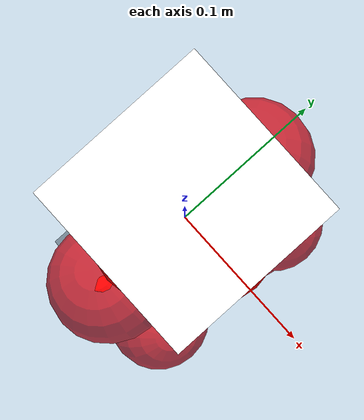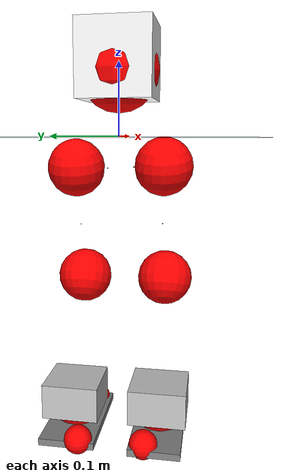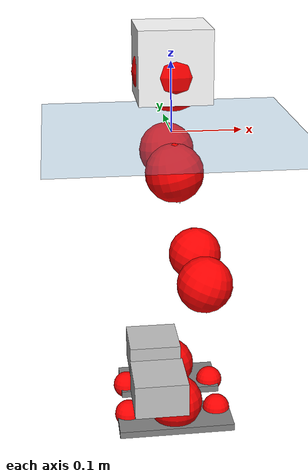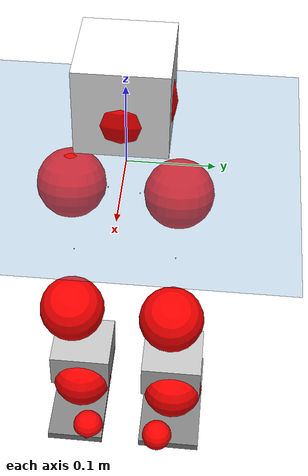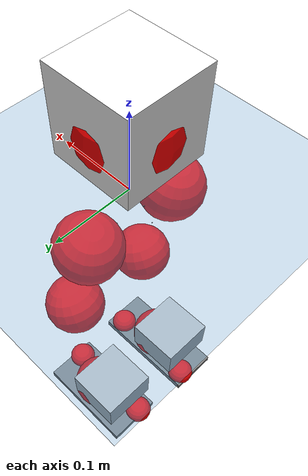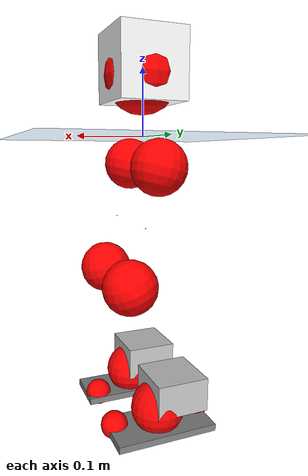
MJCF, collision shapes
<mujoco model="pi_12dof_release_v1">
  <compiler angle="radian" assetdir="assets" balanceinertia="true" inertiafromgeom="false"/>

  <option timestep="0.005" density="1.2" viscosity="2e-05"/>

  <size nkey="1"/>

  <visual>
    <quality shadowsize="8192"/>
    <map shadowclip="0.5"/>
  </visual>

  <default>
    <default class="/">
      <joint armature="0.01" damping="0.01" frictionloss="0.01"/>
      <geom contype="0" conaffinity="0" group="1" solref="-1000 -80"/>
      <site size="0.01 0.005 0.005" group="5"/>
      <general forcelimited="true" biastype="affine" gainprm="20" biasprm="0 -20 -0.5"/>
      <default class="foot">
        <geom size="0.0845 0.036 0.005" type="box" condim="6" group="4" priority="1" friction="0.9 0.2 0.2" solimp="0.015 1 0.005"/>
      </default>
      <default class="reward_collision_sphere">
        <geom group="5" rgba="1 0 0 1"/>
      </default>
    </default>
  </default>

  <asset>
    <texture type="skybox" colorspace="auto" name="//unnamed_texture_0" builtin="gradient" rgb1="0.95 0.95 0.95" rgb2="0.95 0.95 0.95" width="100" height="600"/>
    <texture type="2d" colorspace="auto" name="texplane" builtin="checker" rgb1="0.345 0.575 0.748" rgb2="0.345 0.575 0.748" markrgb="1 1 1" width="512" height="512"/>
    <material name="MatPlane" class="/" texture="texplane" texuniform="true" texrepeat="2 2" specular="0.9"/>
    <mesh name="baselink_1" class="/" file="baselink_1.STL"/>
    <mesh name="r_hip_pitch_link" class="/" file="r_hip_pitch_link.STL"/>
    <mesh name="r_hip_roll_link" class="/" file="r_hip_roll_link.STL"/>
    <mesh name="r_thigh_link" class="/" file="r_thigh_link.STL"/>
    <mesh name="r_calf_link" class="/" file="r_calf_link.STL"/>
    <mesh name="r_ankle_pitch_link" class="/" file="r_ankle_pitch_link.STL"/>
    <mesh name="r_ankle_roll_link" class="/" file="r_ankle_roll_link.STL"/>
    <mesh name="l_hip_pitch_link" class="/" file="l_hip_pitch_link.STL"/>
    <mesh name="l_hip_roll_link" class="/" file="l_hip_roll_link.STL"/>
    <mesh name="l_thigh_link" class="/" file="l_thigh_link.STL"/>
    <mesh name="l_calf_link" class="/" file="l_calf_link.STL"/>
    <mesh name="l_ankle_pitch_link" class="/" file="l_ankle_pitch_link.STL"/>
    <mesh name="l_ankle_roll_link" class="/" file="l_ankle_roll_link.STL"/>
  </asset>

  <worldbody>
    <geom name="floor" class="/" size="100 100 0.125" type="plane" group="0" material="MatPlane"/>
    <light name="toplight_shadow" class="/" pos="0 0 5" dir="0.0990148 0.0990148 -0.990148" type="directional" ambient="0.04 0.04 0.04" diffuse="0.55 0.55 0.55" specular="0.12 0.12 0.12"/>
    <light name="toplight_fill" class="/" pos="0 0 5" dir="0.0990148 0.0990148 -0.990148" type="directional" castshadow="false" ambient="0.04 0.04 0.04" diffuse="0.3 0.3 0.3" specular="0.08 0.08 0.08"/>
    <body name="trunk" pos="0.000857336 -0.000229995 -0.000174014" quat="1 -0.000186662 0.000123737 0.000232121">
      <inertial pos="-9.96726e-05 -0.00302107 0.0500046" quat="0.695383 0.0148002 0.00967126 0.718422" mass="2.31907" diaginertia="0.00914401 0.00303951 0.0122935"/>
      <joint name="//unnamed_joint_0" type="free"/>
      <geom name="//unnamed_geom_1" class="/" type="mesh" density="0" rgba="1 1 1 1" mesh="baselink_1"/>
      <geom name="//unnamed_geom_2" class="/" size="0.0506371 0.0506371 0.0506371" pos="0 0 0.0996204" type="box" rgba="1 1 1 1"/>
      <geom name="//unnamed_geom_3" class="reward_collision_sphere" size="0.0557008" pos="0 0 0.0871678"/>
      <site name="imu" class="/" pos="0.0136675 0.000770906 -0.0136871" size="0.0101274"/>
      <camera name="track" class="/" pos="0 -1.61112 0" quat="0.707107 0.707107 0 0" mode="trackcom"/>
      <camera name="ego_camera" class="/" pos="0.0740558 0 0.224146" quat="-0.5 -0.5 0.5 0.5"/>
      <body name="r_hip_pitch_link" pos="-0.00227676 -0.0207877 -0.0418019" quat="0.992205 -6.02225e-05 -0.124616 4.88879e-05">
        <inertial pos="0.00126105 -0.0479518 -0.000340139" quat="-0.0191094 0.706657 -0.0287448 0.706713" mass="0.378231" diaginertia="9.92617e-05 3.12014e-05 0.00024127"/>
        <joint name="r_hip_pitch_joint" class="/" pos="0 0 0" axis="0.000339122 -1 -0.000867458" stiffness="0.0103764" range="-1.7607 1.19665" armature="0.00875823" damping="0.0131116" frictionloss="0.00990841"/>
        <geom name="//unnamed_geom_4" class="/" type="mesh" density="0" rgba="0.75294 0.75294 0.75294 1" mesh="r_hip_pitch_link"/>
        <geom name="//unnamed_geom_5" class="/" size="0.000506371 0.000506371 0.000506371" type="box" rgba="0.75294 0.75294 0.75294 1"/>
        <body name="r_hip_roll_link" pos="-0.00151557 -0.042645 0.00193784" quat="0.999999 -0.000927565 -0.000875923 0.000604661">
          <inertial pos="-0.00228356 -1.85572e-05 -0.0754035" quat="0.711198 -0.0884564 -0.0791323 0.692901" mass="0.393403" diaginertia="0.000313885 9.16453e-05 0.000383181"/>
          <joint name="r_hip_roll_joint" class="/" pos="0 0 0" axis="-0.999932 -0.00572099 0.0102058" range="-0.136602 0.5022" armature="0.00912081" damping="0" frictionloss="0.0114896"/>
          <geom name="//unnamed_geom_6" class="/" type="mesh" density="0" rgba="0.75294 0.75294 0.75294 1" mesh="r_hip_roll_link"/>
          <geom name="//unnamed_geom_7" class="/" size="0.000506371 0.000506371 0.000506371" type="box" rgba="0.75294 0.75294 0.75294 1"/>
          <geom name="//unnamed_geom_8" class="reward_collision_sphere" size="0.0405097"/>
          <body name="r_thigh_link" pos="0.00230098 0.00298246 -0.0870197" quat="1 0.000352299 7.1386e-05 0.000276407">
            <inertial pos="0.000826158 -0.0006552 -0.0601905" quat="0.738834 0.673888 0.000376676 0.00010612" mass="0.118379" diaginertia="0.000114839 3.23671e-05 0.000173404"/>
            <joint name="r_thigh_joint" class="/" pos="0 0 0" axis="-0.00323435 0.00300022 -0.99999" stiffness="7.18625e-05" range="-0.348313 0.622473" armature="0.0116357" damping="0" frictionloss="0.010672"/>
            <geom name="//unnamed_geom_9" class="/" type="mesh" density="0" rgba="0.75294 0.75294 0.75294 1" mesh="r_thigh_link"/>
            <geom name="//unnamed_geom_10" class="/" size="0.000506371 0.000506371 0.000506371" type="box" rgba="0.75294 0.75294 0.75294 1"/>
            <body name="r_calf_link" pos="-0.00209046 -0.00262369 -0.0872544" quat="0.947667 6.43505e-05 0.319261 4.07667e-06">
              <inertial pos="-0.00247809 -0.00335868 -0.0890595" quat="0.999931 -0.00669847 -0.00879123 -0.00385516" mass="0.835308" diaginertia="0.00315591 0.00121204 0.000499934"/>
              <joint name="r_calf_joint" class="/" pos="0 0 0" axis="-0.00978333 -0.999951 -0.00140613" range="-1.6499 0.655087" armature="0.00961269" damping="0.0131411" frictionloss="0.0100624"/>
              <geom name="//unnamed_geom_11" class="/" type="mesh" density="0" rgba="0.75294 0.75294 0.75294 1" mesh="r_calf_link"/>
              <geom name="//unnamed_geom_12" class="/" size="0.000506371 0.000506371 0.000506371" type="box" rgba="0.75294 0.75294 0.75294 1"/>
              <geom name="//unnamed_geom_13" class="reward_collision_sphere" size="0.0405097"/>
              <body name="r_ankle_pitch_link" pos="0.00190597 -0.000167307 -0.176611" quat="0.979863 -0.000943825 -0.199668 -0.00018549">
                <inertial pos="0.00755247 0.00357578 -0.0017855" quat="0.000282809 0.710075 -0.00907522 0.704068" mass="0.191168" diaginertia="0.000285684 7.36807e-05 0.000375955"/>
                <joint name="r_ankle_pitch_joint" class="/" pos="0 0 0" axis="-0.00555409 -0.999958 0.00725321" range="-1.24258 0.542662" armature="0.011042" damping="0" frictionloss="0.0103405"/>
                <geom name="//unnamed_geom_14" class="/" type="mesh" density="0" rgba="0.75294 0.75294 0.75294 1" mesh="r_ankle_pitch_link"/>
                <geom name="//unnamed_geom_15" class="/" size="0.0394969 0.0405097 0.0253186" type="box" rgba="0.75294 0.75294 0.75294 1"/>
                <body name="r_ankle_roll_link" pos="0.0732564 0.00116599 0.000660119" quat="1 3.97354e-05 -0.000709744 -0.000300529">
                  <inertial pos="-0.0261688 8.97393e-05 -0.0179036" quat="0.555414 0.442217 0.433578 0.55495" mass="0.567433" diaginertia="0.00110133 0.000357877 0.000872431"/>
                  <joint name="r_ankle_roll_joint" class="/" pos="0 0 0" axis="-0.999966 -0.00767335 -0.00302391" stiffness="0.00243339" range="-0.110607 0.163313" armature="0.0114999" damping="0.0122684" frictionloss="0.00971137"/>
                  <geom name="//unnamed_geom_16" class="/" type="mesh" density="0" rgba="0.75294 0.75294 0.75294 1" mesh="r_ankle_roll_link"/>
                  <geom name="//unnamed_geom_17" class="/" type="mesh" rgba="0.75294 0.75294 0.75294 1" mesh="r_ankle_roll_link"/>
                  <geom name="right_foot" class="foot" size="0.0846306 0.0366484 0.00504971" pos="-0.0503579 0 -0.0547912"/>
                  <geom name="//unnamed_geom_19" class="reward_collision_sphere" size="0.0405097" pos="-0.0493705 0 -0.0249051"/>
                  <geom name="//unnamed_geom_20" class="reward_collision_sphere" size="0.0202548" pos="0.0148112 0.0161112 -0.0498102"/>
                  <geom name="//unnamed_geom_21" class="reward_collision_sphere" size="0.0202548" pos="-0.118489 0.0161112 -0.0498102"/>
                  <site name="right_foot" class="foot" pos="-0.0503579 0 -0.0547912" size="0.0101274"/>
                </body>
              </body>
            </body>
          </body>
        </body>
      </body>
      <body name="l_hip_pitch_link" pos="0.00219998 0.0167623 -0.0437693" quat="0.992199 7.79808e-06 -0.124662 -1.23014e-06">
        <inertial pos="0.0012706 0.0452446 -0.00288393" quat="-0.0312384 0.710955 0.0214311 0.702216" mass="0.419219" diaginertia="0.000128112 3.73315e-05 0.000306589"/>
        <joint name="l_hip_pitch_joint" class="/" pos="0 0 0" axis="0.000468434 0.999996 0.00283922" range="-1.27171 1.75207" armature="0.0103844" damping="0.0198583" frictionloss="0.00906291"/>
        <geom name="//unnamed_geom_22" class="/" type="mesh" density="0" rgba="0.75294 0.75294 0.75294 1" mesh="l_hip_pitch_link"/>
        <geom name="//unnamed_geom_23" class="/" size="0.000506371 0.000506371 0.000506371" type="box" rgba="0.75294 0.75294 0.75294 1"/>
        <body name="l_hip_roll_link" pos="-0.00273041 0.0446646 0.00111383" quat="1 -1.75075e-05 -3.80124e-05 3.46234e-05">
          <inertial pos="-0.00428477 -0.000273434 -0.0783928" quat="0.699567 -0.0752847 -0.0785992 0.70623" mass="0.390569" diaginertia="0.000294297 9.40779e-05 0.000373944"/>
          <joint name="l_hip_roll_joint" class="/" pos="0 0 0" axis="-0.999999 0.00101462 0.00115096" range="-0.504495 0.139619" armature="0.0105754" damping="0.0183227" frictionloss="0.00936147"/>
          <geom name="//unnamed_geom_24" class="/" type="mesh" density="0" rgba="0.75294 0.75294 0.75294 1" mesh="l_hip_roll_link"/>
          <geom name="//unnamed_geom_25" class="/" size="0.000506371 0.000506371 0.000506371" type="box" rgba="0.75294 0.75294 0.75294 1"/>
          <geom name="//unnamed_geom_26" class="reward_collision_sphere" size="0.0405097"/>
          <body name="l_thigh_link" pos="-0.0011807 -0.000266664 -0.0867586" quat="1 0.000244811 -0.000151155 8.99403e-05">
            <inertial pos="0.00135892 0.001286 -0.0589973" quat="0.671733 0.74075 0.00483394 -0.00639829" mass="0.120203" diaginertia="0.00011751 3.4189e-05 0.000177356"/>
            <joint name="l_thigh_joint" class="/" pos="0 0 0" axis="0.000557435 -0.000380732 -1" range="-0.654408 0.26134" armature="0.0099732" damping="0.00843424" frictionloss="0.0103032"/>
            <geom name="//unnamed_geom_27" class="/" type="mesh" density="0" rgba="0.75294 0.75294 0.75294 1" mesh="l_thigh_link"/>
            <geom name="//unnamed_geom_28" class="/" size="0.000506371 0.000506371 0.000506371" type="box" rgba="0.75294 0.75294 0.75294 1"/>
            <body name="l_calf_link" pos="0.00156748 -0.000544264 -0.0869881" quat="0.947777 0.000336048 0.318934 -0.000121924">
              <inertial pos="-0.00127392 0.00334234 -0.089565" quat="0.999914 0.00393464 0.0112792 0.00533081" mass="0.846567" diaginertia="0.00319822 0.00115516 0.00050573"/>
              <joint name="l_calf_joint" class="/" pos="0 0 0" axis="0.00362695 0.999913 -0.0126888" range="-0.647714 1.65109" armature="0.0101895" damping="0" frictionloss="0.0101298"/>
              <geom name="//unnamed_geom_29" class="/" type="mesh" density="0" rgba="0.75294 0.75294 0.75294 1" mesh="l_calf_link"/>
              <geom name="//unnamed_geom_30" class="/" size="0.000506371 0.000506371 0.000506371" type="box" rgba="0.75294 0.75294 0.75294 1"/>
              <geom name="//unnamed_geom_31" class="reward_collision_sphere" size="0.0405097"/>
              <body name="l_ankle_pitch_link" pos="0.00263108 0.000902428 -0.177576" quat="0.979985 -0.0011589 -0.199068 0.00054234">
                <inertial pos="0.00541739 0.000683564 -0.00109269" quat="-0.0025163 0.706528 0.00214745 0.707677" mass="0.172904" diaginertia="0.000273145 7.36532e-05 0.000353796"/>
                <joint name="l_ankle_pitch_joint" class="/" pos="0 0 0" axis="0.00221139 0.999997 -0.000781575" range="-0.533661 1.26389" armature="0.00919137" damping="0.0071478" frictionloss="0.0103381"/>
                <geom name="//unnamed_geom_32" class="/" type="mesh" density="0" rgba="0.75294 0.75294 0.75294 1" mesh="l_ankle_pitch_link"/>
                <geom name="//unnamed_geom_33" class="/" size="0.0394969 0.0405097 0.0253186" type="box" rgba="0.75294 0.75294 0.75294 1"/>
                <body name="l_ankle_roll_link" pos="0.0737626 0.00259575 -0.000310916" quat="0.999999 -0.00116939 -0.00019668 -0.000500533">
                  <inertial pos="-0.0215722 -0.00167957 -0.0188933" quat="0.549646 0.436613 0.436638 0.562677" mass="0.548196" diaginertia="0.00104225 0.000350223 0.000835844"/>
                  <joint name="l_ankle_roll_joint" class="/" pos="0 0 0" axis="-0.999998 -0.00154676 0.00101272" range="-0.0980802 0.109388" armature="0.0115797" damping="0.0226757" frictionloss="0.0104697"/>
                  <geom name="//unnamed_geom_34" class="/" type="mesh" density="0" rgba="0.75294 0.75294 0.75294 1" mesh="l_ankle_roll_link"/>
                  <geom name="//unnamed_geom_35" class="/" type="mesh" rgba="0.75294 0.75294 0.75294 1" mesh="l_ankle_roll_link"/>
                  <geom name="left_foot" class="foot" size="0.0768743 0.0404562 0.00504062" pos="-0.0503579 0 -0.0547912"/>
                  <geom name="//unnamed_geom_37" class="reward_collision_sphere" size="0.0405097" pos="-0.0493705 0 -0.0249051"/>
                  <geom name="//unnamed_geom_38" class="reward_collision_sphere" size="0.0202548" pos="0.0148112 -0.0161112 -0.0498102"/>
                  <geom name="//unnamed_geom_39" class="reward_collision_sphere" size="0.0202548" pos="-0.118489 -0.0161112 -0.0498102"/>
                  <site name="left_foot" class="foot" pos="-0.0503579 0 -0.0547912" size="0.0101274"/>
                </body>
              </body>
            </body>
          </body>
        </body>
      </body>
    </body>
  </worldbody>

  <contact>
    <pair class="/" geom1="floor" geom2="right_foot" name="//unnamed_contact_1"/>
    <pair class="/" geom1="floor" geom2="left_foot" name="//unnamed_contact_0"/>
  </contact>

  <actuator>
    <general name="r_hip_pitch_joint" class="/" joint="r_hip_pitch_joint" forcerange="-23.3931 23.3931" gainprm="19.142" biasprm="0 -19.142 -0.506739"/>
    <general name="r_hip_roll_joint" class="/" joint="r_hip_roll_joint" forcerange="-21.1139 21.1139" gainprm="19.142" biasprm="0 -19.142 -0.506739"/>
    <general name="r_thigh_joint" class="/" joint="r_thigh_joint" forcerange="-21.2072 21.2072" gainprm="19.142" biasprm="0 -19.142 -0.506739"/>
    <general name="r_calf_joint" class="/" joint="r_calf_joint" forcerange="-23.4441 23.4441" gainprm="19.142" biasprm="0 -19.142 -0.506739"/>
    <general name="r_ankle_pitch_joint" class="/" joint="r_ankle_pitch_joint" forcerange="-20.4703 20.4703" gainprm="19.142" biasprm="0 -19.142 -0.506739"/>
    <general name="r_ankle_roll_joint" class="/" joint="r_ankle_roll_joint" forcerange="-21.7642 21.7642" gainprm="19.142" biasprm="0 -19.142 -0.506739"/>
    <general name="l_hip_pitch_joint" class="/" joint="l_hip_pitch_joint" forcerange="-19.27 19.27" gainprm="19.142" biasprm="0 -19.142 -0.506739"/>
    <general name="l_hip_roll_joint" class="/" joint="l_hip_roll_joint" forcerange="-19.1564 19.1564" gainprm="19.142" biasprm="0 -19.142 -0.506739"/>
    <general name="l_thigh_joint" class="/" joint="l_thigh_joint" forcerange="-21.4884 21.4884" gainprm="19.142" biasprm="0 -19.142 -0.506739"/>
    <general name="l_calf_joint" class="/" joint="l_calf_joint" forcerange="-21.7025 21.7025" gainprm="19.142" biasprm="0 -19.142 -0.506739"/>
    <general name="l_ankle_pitch_joint" class="/" joint="l_ankle_pitch_joint" forcerange="-23.0623 23.0623" gainprm="19.142" biasprm="0 -19.142 -0.506739"/>
    <general name="l_ankle_roll_joint" class="/" joint="l_ankle_roll_joint" forcerange="-22.1544 22.1544" gainprm="19.142" biasprm="0 -19.142 -0.506739"/>
  </actuator>

  <sensor>
    <gyro site="imu" name="imu_angular_velocity"/>
    <velocimeter site="imu" name="imu_linear_velocity"/>
    <framelinvel objtype="site" objname="left_foot" name="left_foot_global_linear_velocity"/>
    <framelinvel objtype="site" objname="right_foot" name="right_foot_global_linear_velocity"/>
  </sensor>

  <keyframe>
    <key name="home" qpos="0 0 0.291 1 0 0 0 0.4 0 0 -0.8 0.4 0 -0.4 0 0 0.8 -0.4 0"/>
  </keyframe>
</mujoco>
